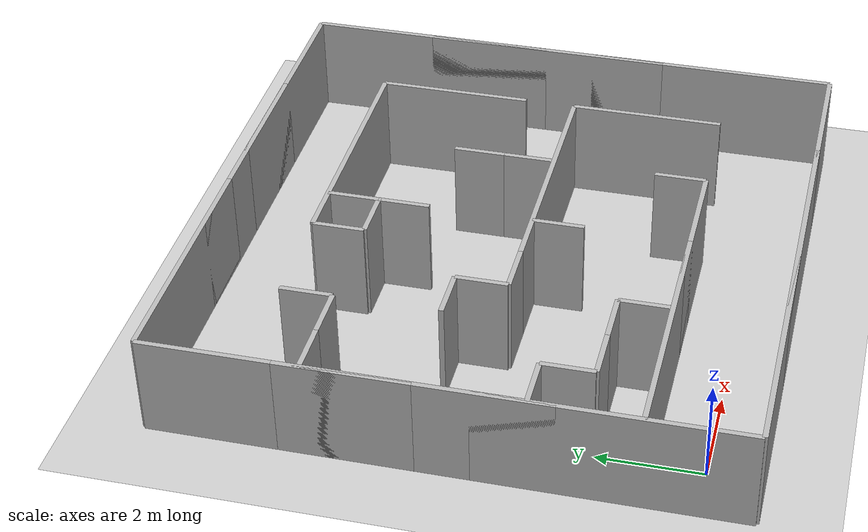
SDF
<?xml version="1.0" ?>
<sdf version="1.4">
  <world name="default">
    <include>
      <uri>model://ground_plane</uri>
    </include>
    <include>
      <uri>model://sun</uri>
    </include>

    <!-- Only one ROS interface plugin is required per world, as any other plugin can connect a Gazebo
         topic to a ROS topic (or vise versa). -->
    <plugin name="ros_interface_plugin" filename="librotors_gazebo_ros_interface_plugin.so"/>

    <spherical_coordinates>
      <surface_model>EARTH_WGS84</surface_model>
      <latitude_deg>47.3667</latitude_deg>
      <longitude_deg>8.5500</longitude_deg>
      <elevation>500.0</elevation>
      <heading_deg>0</heading_deg>
    </spherical_coordinates>
    <physics type='ode'>
      <ode>
        <solver>
          <type>quick</type>
          <iters>1000</iters>
          <sor>1.3</sor>
        </solver>
        <constraints>
          <cfm>0</cfm>
          <erp>0.2</erp>
          <contact_max_correcting_vel>100</contact_max_correcting_vel>
          <contact_surface_layer>0.001</contact_surface_layer>
        </constraints>
      </ode>
      <max_step_size>0.01</max_step_size>
      <real_time_factor>1</real_time_factor>
      <real_time_update_rate>100</real_time_update_rate>
      <gravity>0 0 -9.8</gravity>
    </physics>

    <include>
      <name>wall 1</name>
      <uri>model://wall5</uri>
      <pose>-1 1.5 1 0 0 0</pose>
    </include>
    <include>
      <name>wall 2</name>
      <uri>model://wall5</uri>
      <pose>-1 7.5 1 0 0 0</pose>
    </include>
    <include>
      <name>wall 3</name>
      <uri>model://wall5</uri>
      <pose>-1 5 1 0 0 0</pose>
    </include>

    <include>
      <name>wall 7</name>
      <uri>model://wall5</uri>
      <pose>10 1.5 1 0 0 0</pose>
    </include>
    <include>
      <name>wall 8</name>
      <uri>model://wall5</uri>
      <pose>10 7.5 1 0 0 0</pose>
    </include>
    <include>
      <name>wall 9</name>
      <uri>model://wall5</uri>
      <pose>10 5 1 0 0 0</pose>
    </include>

    <include>
      <name>wall 4</name>
      <uri>model://wall5</uri>
      <pose>1.5 -1 1 0 0 1.57079632679</pose>
    </include>
    <include>
      <name>wall 5</name>
      <uri>model://wall5</uri>
      <pose>7.5 -1 1 0 0 1.57079632679</pose>
    </include>
    <include>
      <name>wall 6</name>
      <uri>model://wall5</uri>
      <pose>5 -1 1 0 0 1.57079632679</pose>
    </include>

    <include>
      <name>wall 10</name>
      <uri>model://wall5</uri>
      <pose>1.5 10 1 0 0 1.57079632679</pose>
    </include>
    <include>
      <name>wall 11</name>
      <uri>model://wall5</uri>
      <pose>7.5 10 1 0 0 1.57079632679</pose>
    </include>
    <include>
      <name>wall 12</name>
      <uri>model://wall5</uri>
      <pose>5 10 1 0 0 1.57079632679</pose>
    </include>

    <include>
      <name>wall 13</name>
      <uri>model://wall5</uri>
      <pose>1.5 1 1 0 0 1.57079632679</pose>
    </include>
    <include>
      <name>wall 14</name>
      <uri>model://wall3</uri>
      <pose>4.5 1 1 0 0 1.57079632679</pose>
    </include>

    <include>
      <name>wall 15</name>
      <uri>model://wall3</uri>
      <pose>8 2.5 1 0 0 0</pose>
    </include>
    <include>
      <name>wall 16</name>
      <uri>model://wall</uri>
      <pose>6 4.5 1 0 0 0</pose>
    </include>

    <include>
      <name>wall 17</name>
      <uri>model://wall</uri>
      <pose>6 1.5 1 0 0 0</pose>
    </include>
    <include>
      <name>wall 18</name>
      <uri>model://wall</uri>
      <pose>2 1.5 1 0 0 0</pose>
    </include>
    <include>
      <name>wall 19</name>
      <uri>model://wall</uri>
      <pose> 0 2.5 1 0 0 0</pose>
    </include>
    <include>
      <name>wall 20</name>
      <uri>model://wall5</uri>
      <pose>5.5 4 1 0 0 1.57079632679</pose>
    </include>
    <include>
      <name>wall 21</name>
      <uri>model://wall</uri>
      <pose>4 3.5 1 0 0 0</pose>
    </include>
    <include>
      <name>wall 22</name>
      <uri>model://wall</uri>
      <pose>2.5 4 1 0 0 1.57079632679</pose>
    </include>
    <include>
      <name>wall 23</name>
      <uri>model://wall</uri>
      <pose>0.5 2 1 0 0 1.57079632679</pose>
    </include>
    <include>
      <name>wall 24</name>
      <uri>model://wall</uri>
      <pose>1.5 2 1 0 0 1.57079632679</pose>
    </include>
    <include>
      <name>wall 25</name>
      <uri>model://wall</uri>
      <pose>-0.5 3 1 0 0 1.57079632679</pose>
    </include>
    <include>
      <name>wall 26</name>
      <uri>model://wall</uri>
      <pose>2 4.5 1 0 0 0</pose>
    </include>
    <include>
      <name>wall 27</name>
      <uri>model://wall</uri>
      <pose>1.5 5 1 0 0 1.57079632679</pose>
    </include>

    <include>
      <name>wall 28</name>
      <uri>model://wall</uri>
      <pose>0.5 7 1 0 0 1.57079632679</pose>
    </include>
    <include>
      <name>wall 29</name>
      <uri>model://wall</uri>
      <pose>1 7.5 1 0 0 0</pose>
    </include>
    <include>
      <name>wall 30</name>
      <uri>model://wall3</uri>
      <pose>8 6.5 1 0 0 0</pose>
    </include>

    <include>
      <name>wall 31</name>
      <uri>model://wall</uri>
      <pose>-0.5 7 1 0 0 1.57079632679</pose>
    </include>

    <include>
      <name>wall 32</name>
      <uri>model://wall</uri>
      <pose>6 5.5 1 0 0 0</pose>
    </include>

    <include>
      <name>wall 33</name>
      <uri>model://wall5</uri>
      <pose> 5.5 8 1 0 0 1.57079632679</pose>
    </include>

    <include>
      <name>wall 34</name>
      <uri>model://wall</uri>
      <pose>3.5 7 1 0 0 1.57079632679</pose>
    </include>

    <include>
      <name>wall 35</name>
      <uri>model://wall</uri>
      <pose>3 7.5 1 0 0 0</pose>
    </include>

    <include>
      <name>wall 36</name>
      <uri>model://wall</uri>
      <pose>4 6.5 1 0 0 0</pose>
    </include>

    <include>
      <name>wall 36</name>
      <uri>model://wall</uri>
      <pose>4 7.5 1 0 0 0</pose>
    </include>

    <plugin name="GazeboPlugin" filename="/home/ananda/ROS/GazeboPlugin/export/lib/libGazeboCoSimPlugin.so"><portNumber>14581</portNumber></plugin>

  </world>
</sdf>

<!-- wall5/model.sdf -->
<sdf version="1.5">
    <model name='unit_box'>
      <static>1</static>
      <pose frame=''>0 0 0 0 0 0</pose>
      <link name='link'>
        <inertial>
          <mass>1</mass>
          <inertia>
            <ixx>0.166667</ixx>
            <ixy>0</ixy>
            <ixz>0</ixz>
            <iyy>0.166667</iyy>
            <iyz>0</iyz>
            <izz>0.166667</izz>
          </inertia>
          <pose frame=''>0 0 0 0 -0 0</pose>
        </inertial>
        <collision name='collision'>
          <geometry>
            <box>
              <size>0.1 5 2</size>
            </box>
          </geometry>
          <max_contacts>10</max_contacts>
          <surface>
            <contact>
              <ode/>
            </contact>
            <bounce/>
            <friction>
              <torsional>
                <ode/>
              </torsional>
              <ode/>
            </friction>
          </surface>
        </collision>
        <visual name='visual'>
          <geometry>
            <box>
              <size>0.1 5 2</size>
            </box>
          </geometry>
            <material>
                <script>
                    <uri>model://wall/scripts/repeated.material</uri>
                    <name>Wall</name>
                </script>
            </material>
        </visual>
        <self_collide>0</self_collide>
        <enable_wind>0</enable_wind>
        <kinematic>0</kinematic>
      </link>
    </model>
</sdf>

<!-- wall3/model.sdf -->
<sdf version="1.5">
    <model name='unit_box'>
      <static>1</static>
      <pose frame=''>0 0 0 0 0 0</pose>
      <link name='link'>
        <inertial>
          <mass>1</mass>
          <inertia>
            <ixx>0.166667</ixx>
            <ixy>0</ixy>
            <ixz>0</ixz>
            <iyy>0.166667</iyy>
            <iyz>0</iyz>
            <izz>0.166667</izz>
          </inertia>
          <pose frame=''>0 0 0 0 -0 0</pose>
        </inertial>
        <collision name='collision'>
          <geometry>
            <box>
              <size>0.1 3 2</size>
            </box>
          </geometry>
          <max_contacts>10</max_contacts>
          <surface>
            <contact>
              <ode/>
            </contact>
            <bounce/>
            <friction>
              <torsional>
                <ode/>
              </torsional>
              <ode/>
            </friction>
          </surface>
        </collision>
        <visual name='visual'>
          <geometry>
            <box>
              <size>0.1 3 2</size>
            </box>
          </geometry>
            <material>
                <script>
                    <uri>model://wall/scripts/repeated.material</uri>
                    <name>Wall</name>
                </script>
            </material>
        </visual>
        <self_collide>0</self_collide>
        <enable_wind>0</enable_wind>
        <kinematic>0</kinematic>
      </link>
    </model>
</sdf>

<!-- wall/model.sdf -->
<sdf version="1.5">
    <model name='unit_box'>
      <static>1</static>
      <pose frame=''>0 0 0 0 0 0</pose>
      <link name='link'>
        <inertial>
          <mass>1</mass>
          <inertia>
            <ixx>0.166667</ixx>
            <ixy>0</ixy>
            <ixz>0</ixz>
            <iyy>0.166667</iyy>
            <iyz>0</iyz>
            <izz>0.166667</izz>
          </inertia>
          <pose frame=''>0 0 0 0 -0 0</pose>
        </inertial>
        <collision name='collision'>
          <geometry>
            <box>
              <size>0.1 1 2</size>
            </box>
          </geometry>
          <max_contacts>10</max_contacts>
          <surface>
            <contact>
              <ode/>
            </contact>
            <bounce/>
            <friction>
              <torsional>
                <ode/>
              </torsional>
              <ode/>
            </friction>
          </surface>
        </collision>
        <visual name='visual'>
          <geometry>
            <box>
              <size>0.1 1 2</size>
            </box>
          </geometry>
            <material>
                <script>
                    <uri>model://wall/scripts/repeated.material</uri>
                    <name>Wall</name>
                </script>
            </material>
        </visual>
        <self_collide>0</self_collide>
        <enable_wind>0</enable_wind>
        <kinematic>0</kinematic>
      </link>
    </model>
</sdf>
